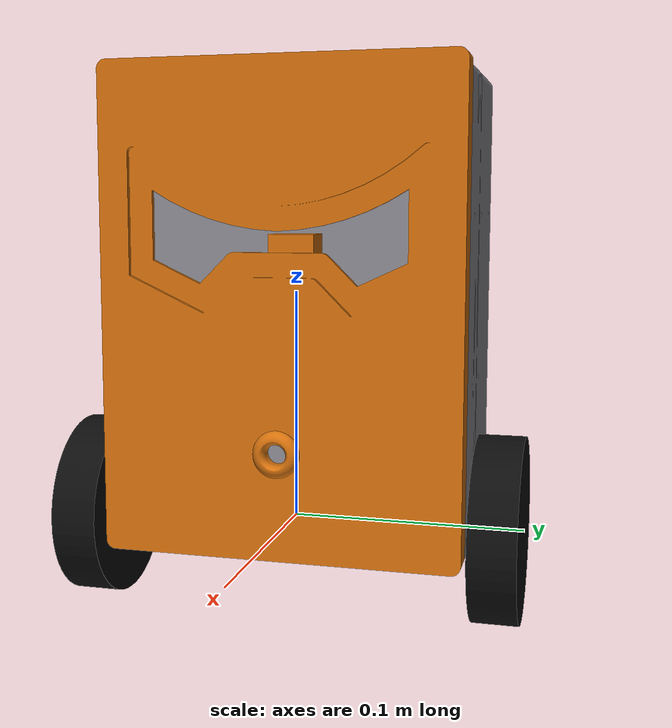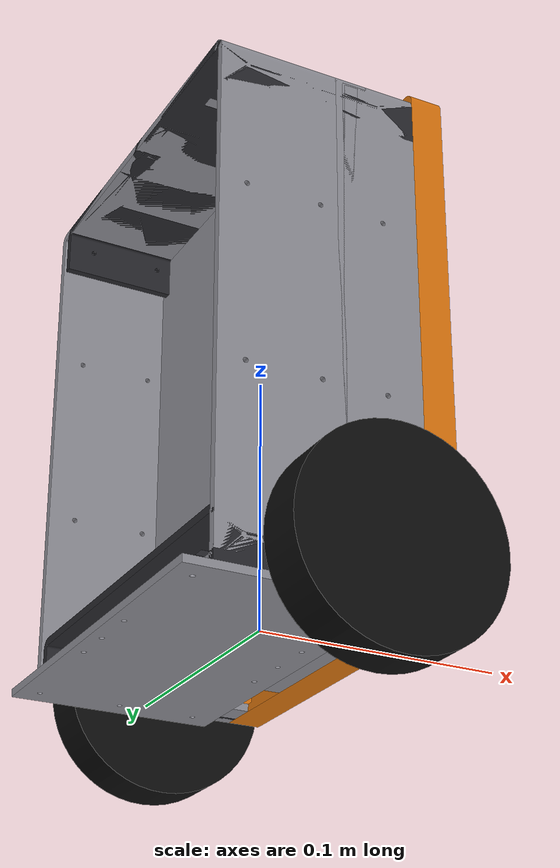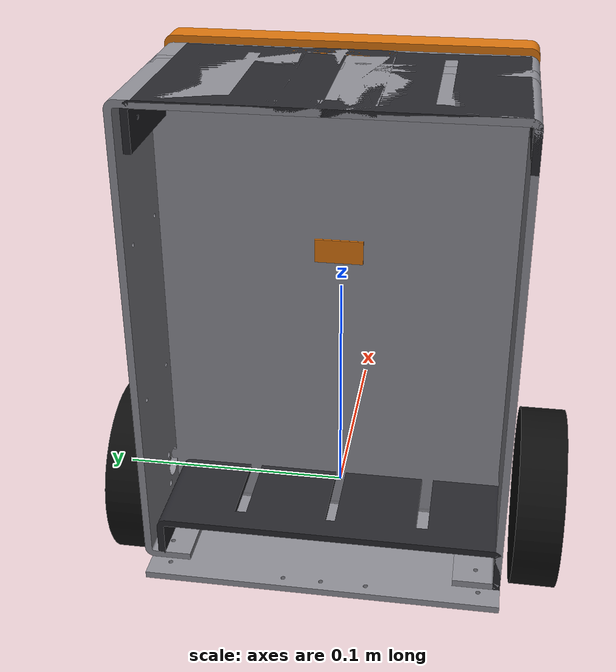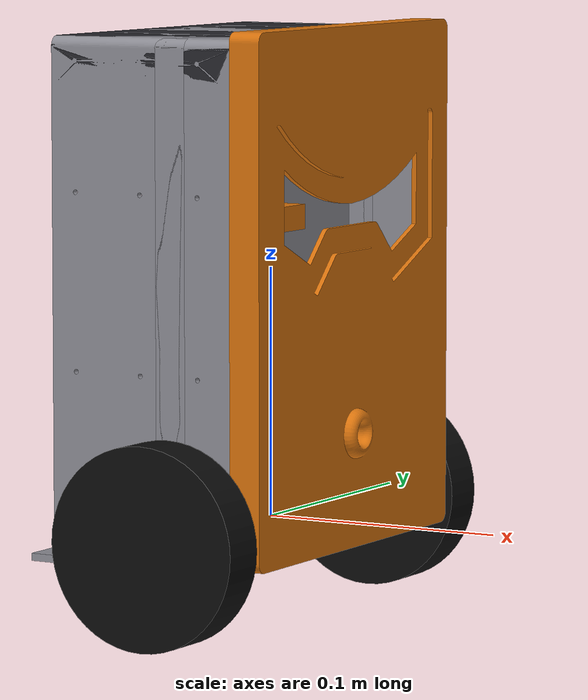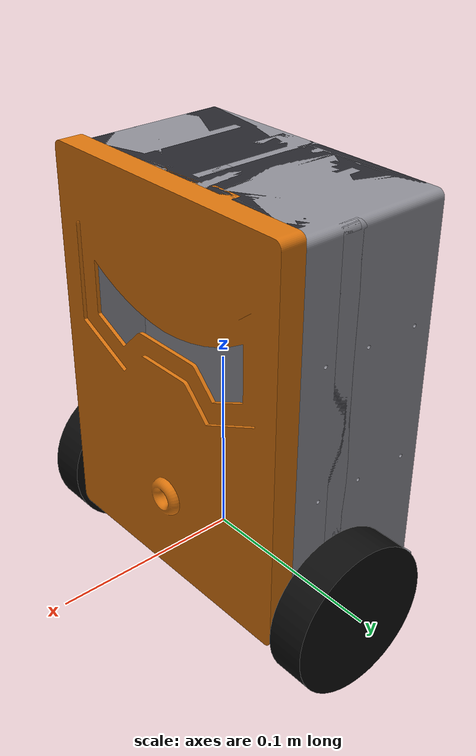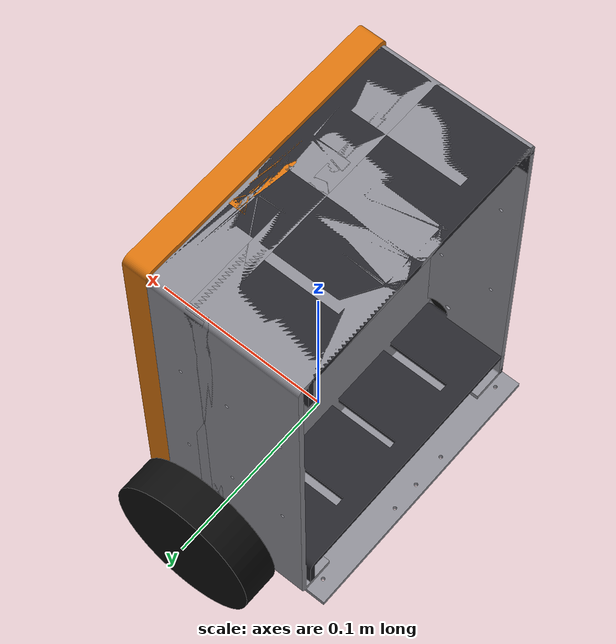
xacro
<?xml version="1.0"?>
<robot name="balancer_robot" xmlns:xacro="http://www.ros.org/wiki/xacro">

  <!-- =========================
       COMMON DEFINITIONS
       ========================= -->
  <xacro:include filename="$(find robot_description)/urdf/common.xacro"/>

  <!-- =========================
       CORE PROPERTIES (FIXED)
       ========================= -->

  <!-- Wheels (kept stable for balancing) -->
  <xacro:property name="wheel_radius" value="0.1"/>
  <xacro:property name="wheel_width"  value="0.02"/>
  <xacro:property name="wheel_mass"   value="0.6"/>

  <!-- Track width -->
  <xacro:property name="track_width" value="0.18"/>

  <!-- Chassis (IMPORTANT: slightly heavier + stable ratio) -->
  <xacro:property name="frame_x" value="0.18"/>
  <xacro:property name="frame_y" value="0.10"/>
  <xacro:property name="frame_z" value="0.12"/>
  <xacro:property name="frame_mass" value="1.5"/>

  <!-- Wheel axle height -->
  <xacro:property name="axle_height" value="${wheel_radius}"/>

  <!-- =========================
       INCLUDE FILES (ORDER FIXED)
       ========================= -->

  <xacro:include filename="$(find robot_description)/urdf/materials.xacro"/>
  <xacro:include filename="$(find robot_description)/urdf/macros.xacro"/>
  <xacro:include filename="$(find robot_description)/urdf/base.xacro"/>
  <xacro:include filename="$(find robot_description)/urdf/wheels.xacro"/>
  <xacro:include filename="$(find robot_description)/urdf/sensors.xacro"/>
  <xacro:include filename="$(find robot_description)/urdf/gazebo.xacro"/>

  <!-- =========================
       WHEELS ASSEMBLY
       ========================= -->

  <xacro:wheel
      prefix="left"
      y_reflect="1"
      mesh_file="wheel_right.stl"/>

  <xacro:wheel
      prefix="right"
      y_reflect="-1"
      mesh_file="wheel_left.stl"/>

</robot>

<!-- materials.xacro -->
<robot xmlns:xacro="http://www.ros.org/wiki/xacro">

  <!-- =========================
       MATERIALS (CLEAN + STANDARD)
       ========================= -->

  <material name="frame_grey">
    <color rgba="0.55 0.55 0.58 1.0"/>
  </material>

  <material name="panel_dark">
    <color rgba="0.15 0.15 0.17 1.0"/>
  </material>

  <material name="wheel_black">
    <color rgba="0.05 0.05 0.05 1.0"/>
  </material>

  <material name="bracket_orange">
    <color rgba="0.85 0.45 0.05 1.0"/>
  </material>

</robot>

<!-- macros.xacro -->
<robot xmlns:xacro="http://www.ros.org/wiki/xacro">

  <!-- ============================================================
       INERTIA MACROS (STABLE FOR SIMULATION)
       ============================================================ -->

  <!-- BOX INERTIA -->
  <xacro:macro name="box_inertia" params="mass x y z">
    <inertia
      ixx="${(mass/12.0) * (y*y + z*z)}"
      ixy="0.0"
      ixz="0.0"
      iyy="${(mass/12.0) * (x*x + z*z)}"
      iyz="0.0"
      izz="${(mass/12.0) * (x*x + y*y)}"/>
  </xacro:macro>

  <!-- CYLINDER INERTIA (axis Y) -->
  <xacro:macro name="cylinder_inertia_y" params="mass r h">
    <inertia
      ixx="${(mass*(3*r*r + h*h))/12.0}"
      ixy="0.0"
      ixz="0.0"
      iyy="${(mass*r*r)/2.0}"
      iyz="0.0"
      izz="${(mass*(3*r*r + h*h))/12.0}"/>
  </xacro:macro>

  <!-- CYLINDER INERTIA (axis Z) -->
  <xacro:macro name="cylinder_inertia_z" params="mass r h">
    <inertia
      ixx="${(mass*(3*r*r + h*h))/12.0}"
      ixy="0.0"
      ixz="0.0"
      iyy="${(mass*(3*r*r + h*h))/12.0}"
      iyz="0.0"
      izz="${(mass*r*r)/2.0}"/>
  </xacro:macro>

</robot>

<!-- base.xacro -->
<robot xmlns:xacro="http://www.ros.org/wiki/xacro">
  <xacro:include filename="common.xacro"/>
  <!-- =========================
       BASE LINK (clean rigid chassis)
       ========================= -->
  <link name="base_link">
    <!-- MAIN FRAME -->
    <visual>
      <origin xyz="0.025 -0.075 -0.01" rpy="0 0 1.5708"/>
      <geometry>
        <mesh filename="package://robot_description/meshes/main_frame.stl"
              scale="0.001 0.001 0.001"/>
      </geometry>
      <material name="frame_grey"/>
    </visual>
    <!-- SIDE PANEL -->
    <visual>
      <origin xyz="0.025 -0.075 -0.01" rpy="0 0 1.5708"/>
      <geometry>
        <mesh filename="package://robot_description/meshes/side_panel.stl"
              scale="0.001 0.001 0.001"/>
      </geometry>
      <material name="frame_grey"/>
    </visual>
    <!-- BOTTOM SHELF (at axle height) -->
    <visual>
      <origin xyz="0.025 -0.075 -0.01" rpy="0 0 1.5708"/>
      <geometry>
        <mesh filename="package://robot_description/meshes/shelf_panel_b.stl"
              scale="0.001 0.001 0.001"/>
      </geometry>
      <material name="panel_dark"/>
    </visual>
    <!-- TOP SHELF -->
    <visual>
      <origin xyz="0.025 -0.075 0.174" rpy="0 0 1.5708"/>
      <geometry>
        <mesh filename="package://robot_description/meshes/shelf_panel_a.stl"
              scale="0.001 0.001 0.001"/>
      </geometry>
      <material name="panel_dark"/>
    </visual>
    <!-- BASE PLATE (underside) -->
    <visual>
      <origin xyz="0.025 -0.075 -0.013" rpy="0 0 1.5708"/>
      <geometry>
        <mesh filename="package://robot_description/meshes/base_plate.stl"
              scale="0.001 0.001 0.001"/>
      </geometry>
      <material name="frame_grey"/>
    </visual>
    <!-- BRACKET (face piece, relative to frame center) -->
    <visual>
      <origin xyz="0.015 -0.075 -0.01" rpy="1.5707963 0 1.5707963"/>
      <geometry>
        <mesh filename="package://robot_description/meshes/bracket_arm.stl"
              scale="0.001 0.001 0.001"/>
      </geometry>
      <material name="bracket_orange"/>
    </visual>
    <!-- COLLISION -->
    <collision>
      <origin xyz="0.025 -0.075 ${frame_z / 2.0 - 0.01}" rpy="0 0 0"/>
      <geometry>
        <box size="${frame_x} ${frame_y} ${frame_z}"/>
      </geometry>
    </collision>
    <!-- INERTIAL -->
    <inertial>
      <origin xyz="0.025 -0.075 ${frame_z / 2.0 - 0.01}" rpy="0 0 0"/>
      <mass value="${frame_mass}"/>
      <xacro:box_inertia mass="${frame_mass}"
                          x="${frame_x}"
                          y="${frame_y}"
                          z="${frame_z}"/>
    </inertial>
  </link>
</robot>

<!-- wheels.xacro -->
<robot xmlns:xacro="http://www.ros.org/wiki/xacro">

  <xacro:macro name="wheel" params="prefix y_reflect mesh_file">

    <link name="${prefix}_wheel_link">

      <!-- VISUAL -->
      <visual>
        <origin xyz="0 0 0" rpy="0 0 3.14159265359"/>
        <geometry>
          <mesh filename="package://robot_description/meshes/${mesh_file}"
                scale="0.001 0.001 0.001"/>
        </geometry>
        <material name="wheel_black"/>
      </visual>

      <!-- COLLISION -->
      <collision>
        <origin xyz="0 0 0" rpy="1.57079632679 0 0"/>
        <geometry>
          <cylinder radius="${wheel_radius}"
                    length="${wheel_width}"/>
        </geometry>
      </collision>

      <!-- INERTIAL (keep realistic but stable) -->
      <inertial>
        <origin xyz="0 0 0" rpy="0 0 0"/>
        <mass value="${wheel_mass}"/>

        <inertia
          ixx="${(wheel_mass*(3*wheel_radius*wheel_radius + wheel_width*wheel_width))/12.0}"
          iyy="${(wheel_mass*wheel_radius*wheel_radius)/2.0}"
          izz="${(wheel_mass*(3*wheel_radius*wheel_radius + wheel_width*wheel_width))/12.0}"
          ixy="0.0"
          ixz="0.0"
          iyz="0.0"/>
      </inertial>

    </link>

    <!-- WHEEL JOINT (FIXED) -->
    <joint name="${prefix}_wheel_joint" type="continuous">
      <parent link="base_link"/>
      <child link="${prefix}_wheel_link"/>

      <origin xyz="0 ${y_reflect * track_width / 2.0} 0"
              rpy="0 0 0"/>

      <axis xyz="0 1 0"/>

      <!-- 🔴 FIX: stable dynamics -->
      <dynamics damping="0.01"
                friction="0.05"/>
    </joint>

    <!-- GAZEBO PHYSICS (FIXED) -->
    <gazebo reference="${prefix}_wheel_link">

      <!-- ground friction (reduced for stability) -->
      <mu1>1.0</mu1>
      <mu2>1.0</mu2>

      <!-- contact parameters -->
      <kp>1000000.0</kp>
      <kd>1.0</kd>

      <slip1>0.0</slip1>
      <slip2>0.0</slip2>

      <material>Gazebo/Black</material>

    </gazebo>

  </xacro:macro>

</robot>

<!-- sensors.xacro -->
<robot xmlns:xacro="http://www.ros.org/wiki/xacro">

  <link name="imu_link">

    <visual>
      <geometry>
        <box size="0.02 0.02 0.01"/>
      </geometry>
      <material name="bracket_orange"/>
    </visual>

    <collision>
      <geometry>
        <box size="0.01 0.01 0.01"/>
      </geometry>
    </collision>

    <inertial>
      <mass value="0.01"/>
      <xacro:box_inertia mass="0.01" x="0.02" y="0.02" z="0.01"/>
    </inertial>

  </link>

  <joint name="imu_joint" type="fixed">
    <parent link="base_link"/>
    <child link="imu_link"/>
    <origin xyz="0 0 0.12" rpy="0 0 0"/>
  </joint>

  <gazebo reference="imu_link">
    <sensor name="imu_sensor" type="imu">
      <always_on>true</always_on>
      <update_rate>200</update_rate>
      <visualize>false</visualize>

      <imu>
        <angular_velocity>
          <noise type="gaussian"><mean>0.0</mean><stddev>0.0001</stddev></noise>
        </angular_velocity>

        <linear_acceleration>
          <noise type="gaussian"><mean>0.0</mean><stddev>0.01</stddev></noise>
        </linear_acceleration>
      </imu>

      <plugin name="imu_plugin" filename="libgazebo_ros_imu_sensor.so">
        <ros>
          <namespace>/</namespace>
          <remapping>~/out:=imu</remapping>
        </ros>
        <initial_orientation_as_reference>false</initial_orientation_as_reference>
      </plugin>

    </sensor>
  </gazebo>

</robot>
